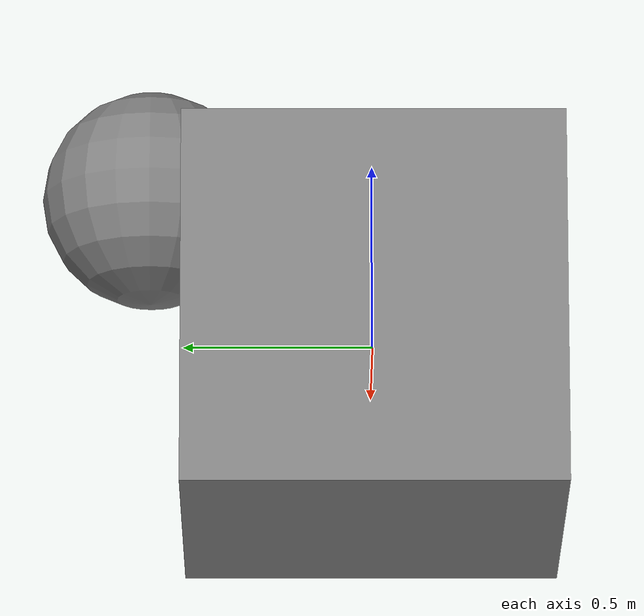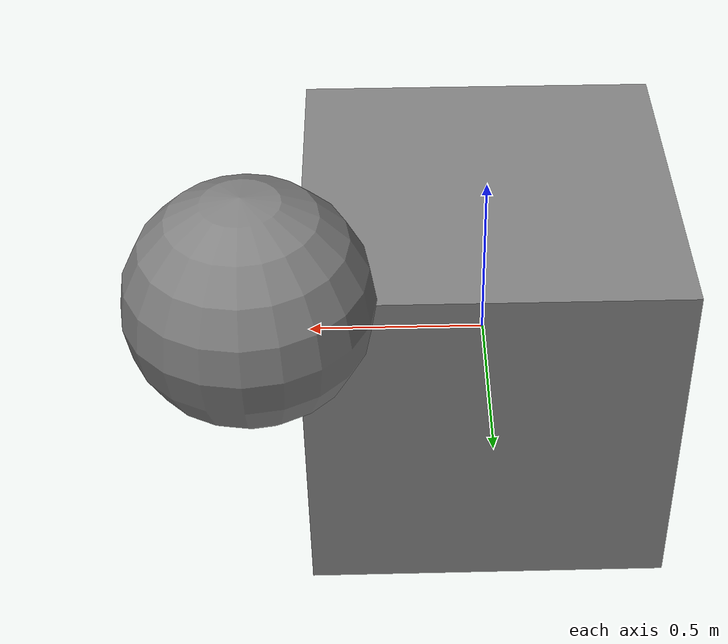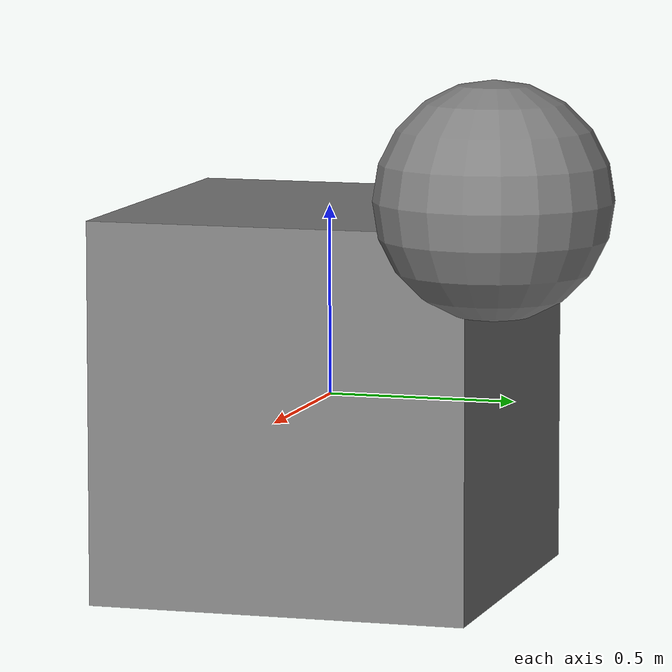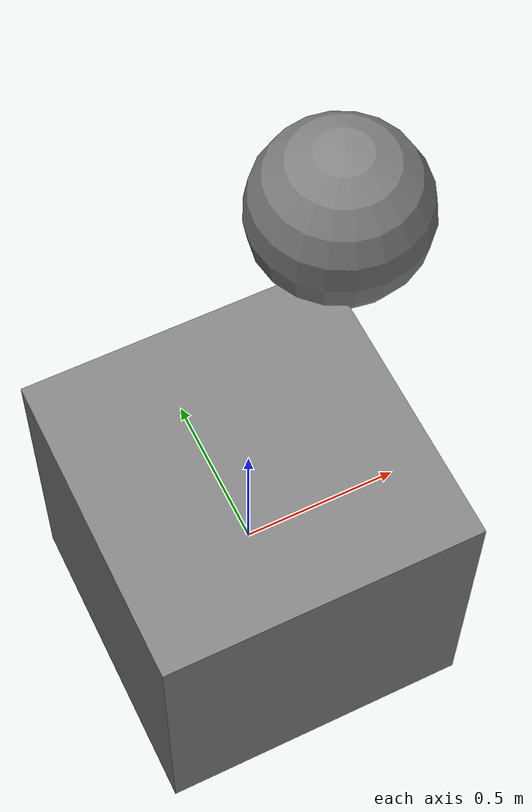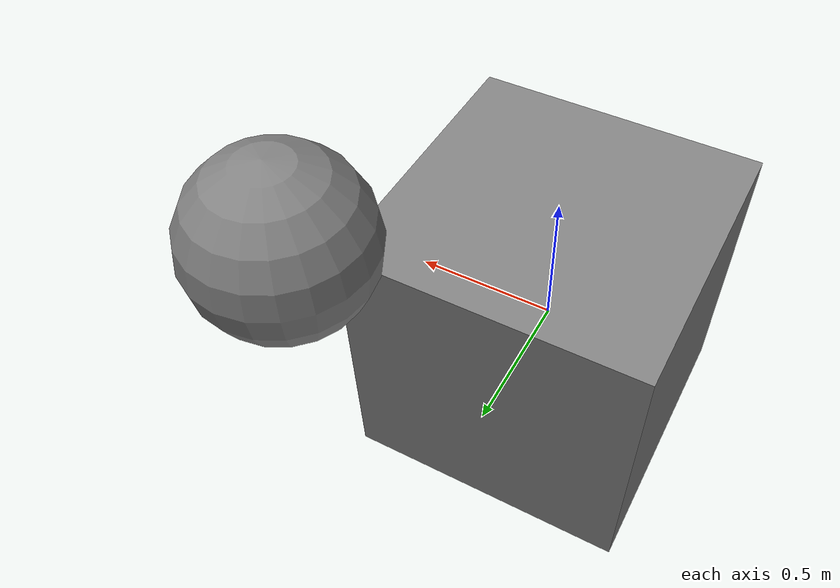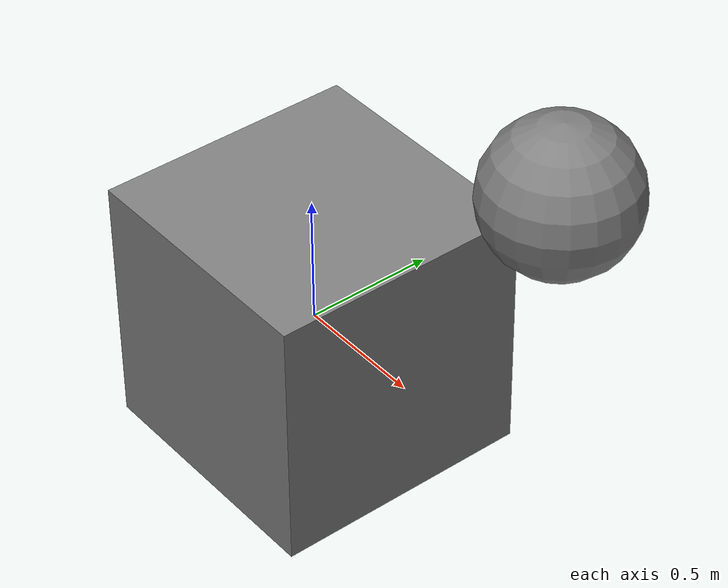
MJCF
<mujoco model="sphere_box_corner">
            <option gravity="0 0 0" timestep="0.001"/>
            <worldbody>
                <body name="box" pos="0 0 0">
                    <joint type="free"/>
                    <geom type="box" size="0.5 0.5 0.5"/>
                </body>
                <body name="sph" pos="0.6 0.6 0.6">
                    <joint type="free"/>
                    <geom type="sphere" size="0.3"/>
                </body>
            </worldbody>
        </mujoco>
